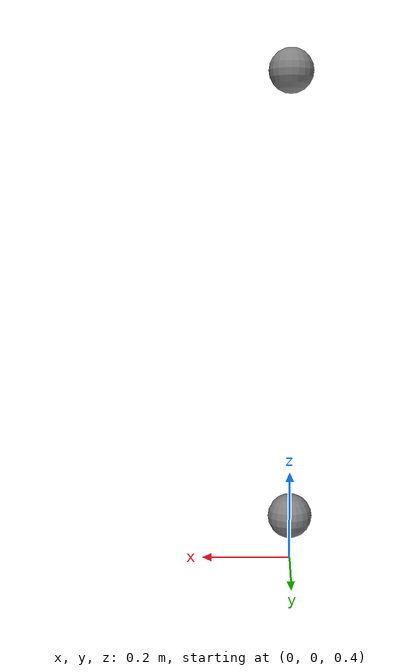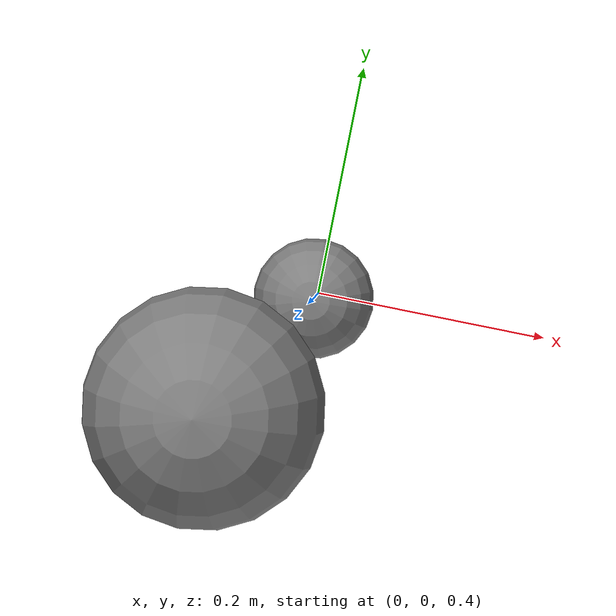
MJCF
<mujoco model="dp">
  <option timestep="0.004166666666666667" gravity="0 0 -9.81" integrator="Euler"/>
  <worldbody>
    <body name="a" pos="0 0 2">
      <joint name="j1" type="hinge" axis="0 1 0" damping="0"/>
      <geom type="sphere" size="0.05" pos="0 0 -0.5" mass="1" />
      <body name="b" pos="0 0 -1">
        <joint name="j2" type="hinge" axis="0 1 0" damping="0"/>
        <geom type="sphere" size="0.05" pos="0 0 -0.5" mass="1"/>
      </body>
    </body>
  </worldbody>
</mujoco>
